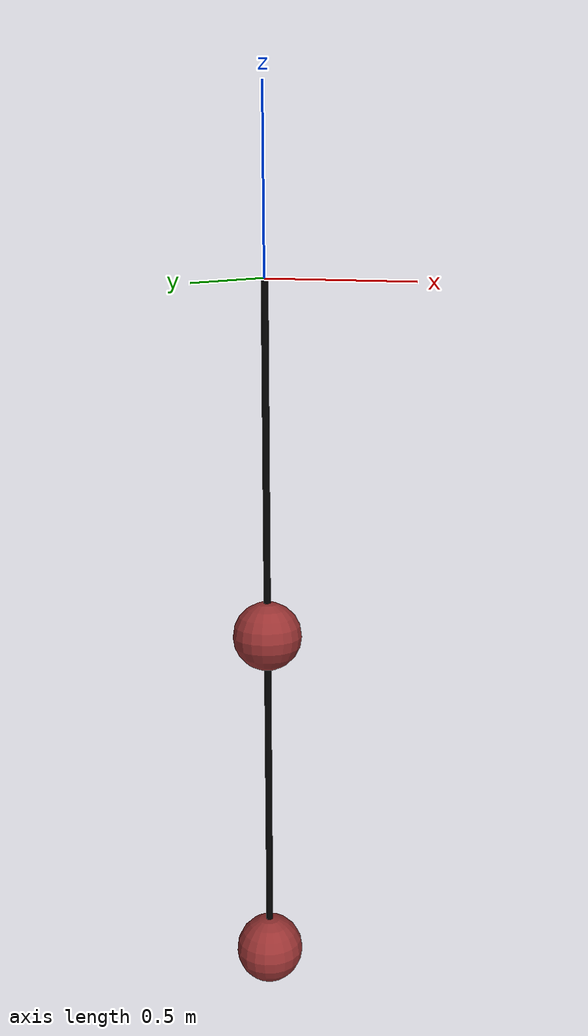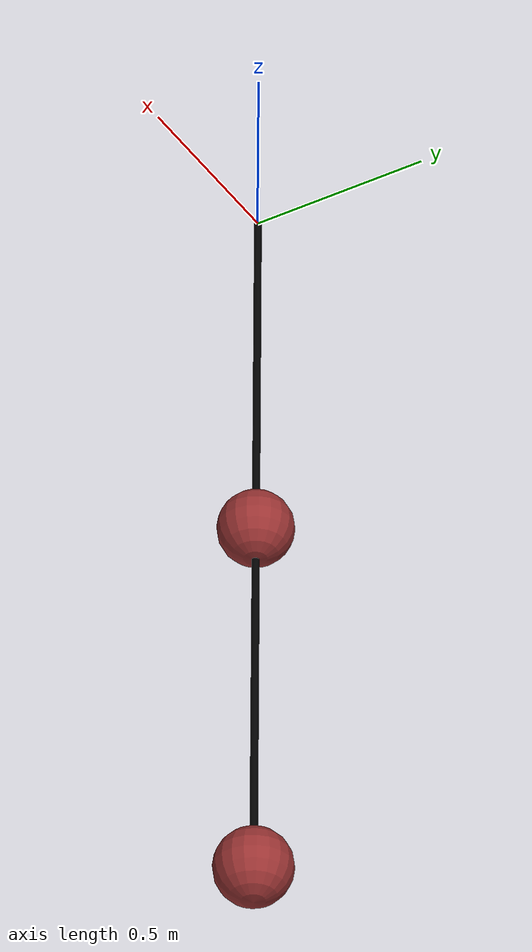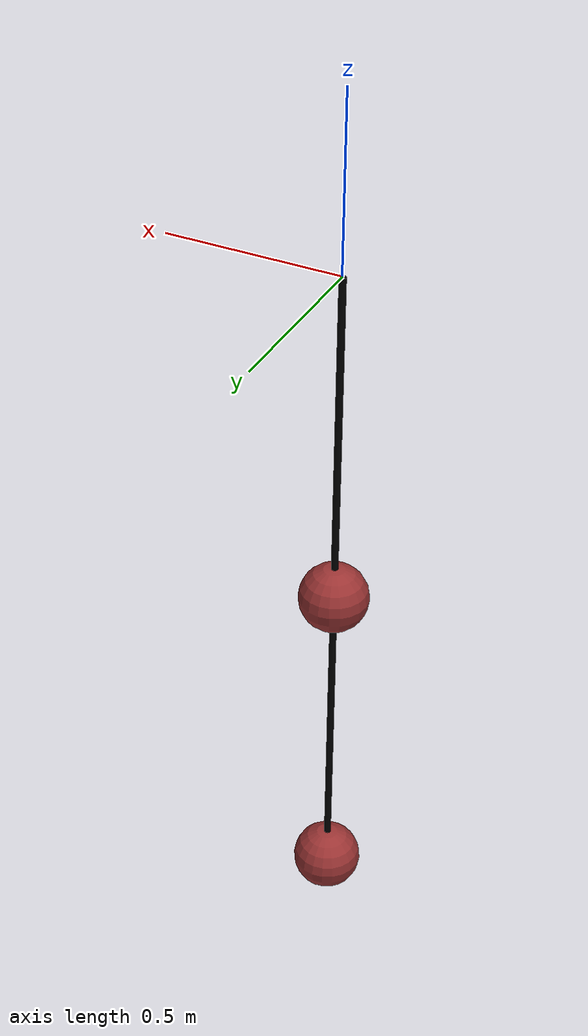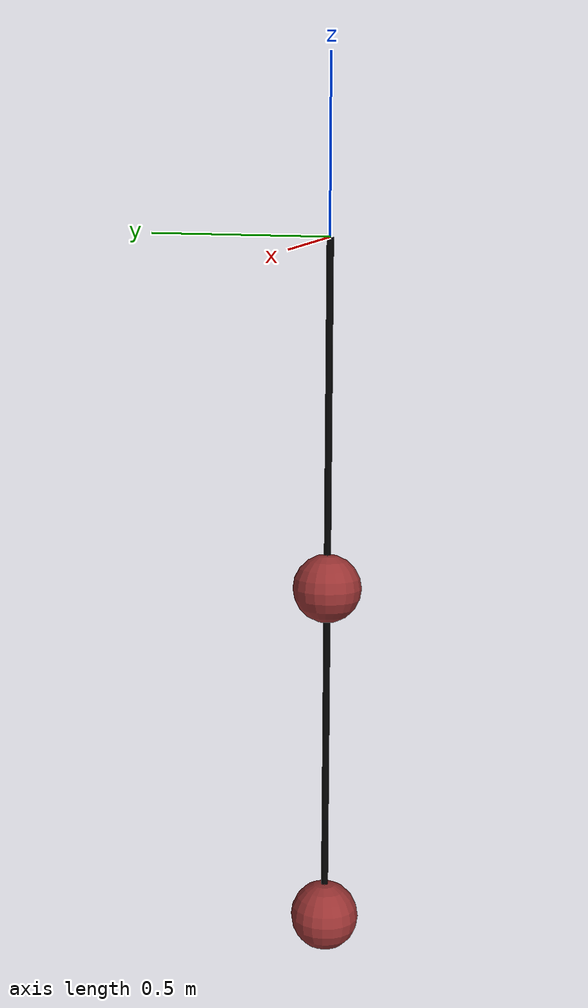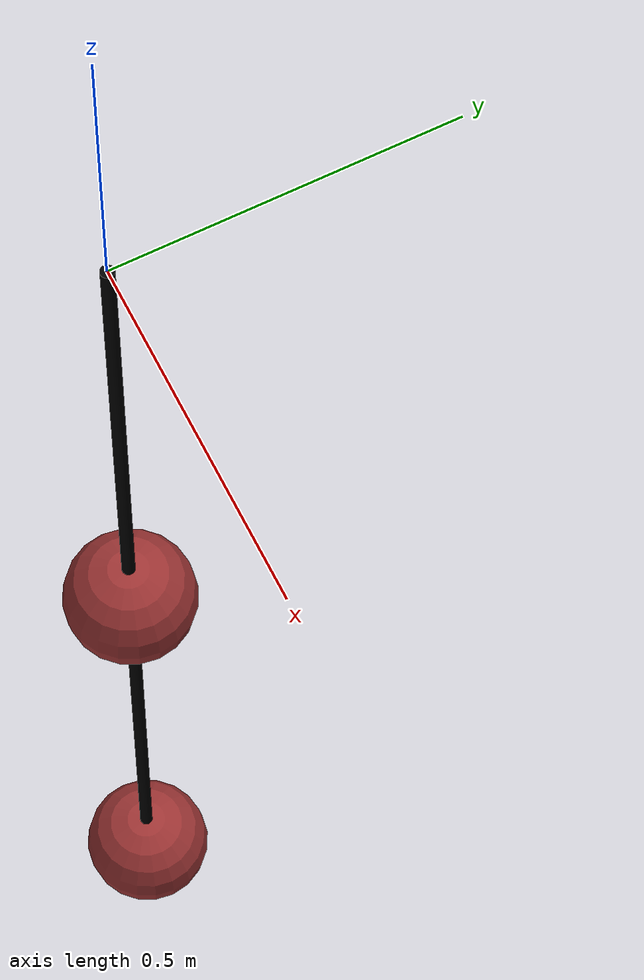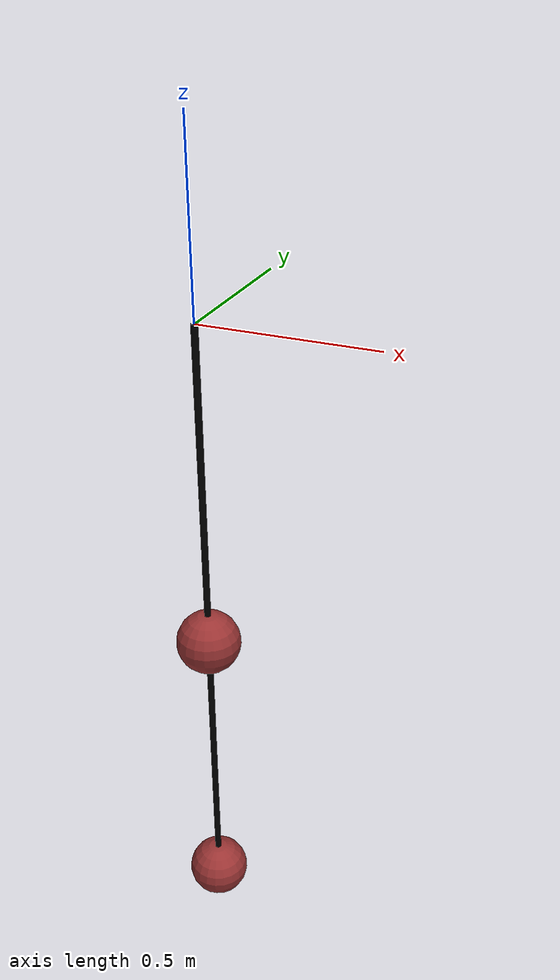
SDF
<?xml version="1.0"?>

<sdf version='1.6'>
  <model name='simple_double_pendulum'>
    <link name="upper_arm">
      <inertial>
        <pose>0 0 -1 0 0 0</pose>
        <mass>1</mass>
        <inertia>
          <ixx>0</ixx>
          <ixy>0</ixy>
          <ixz>0</ixz>
          <iyy>0</iyy>
          <iyz>0</iyz>
          <izz>0</izz>
        </inertia>
      </inertial>
      <visual name="arm">
        <pose>0 0 -.5 0 0 0</pose>
        <geometry>
           <cylinder>
            <length>1</length>
            <radius>.01</radius>
           </cylinder>
        </geometry>
        <material><diffuse>0 0 0 1</diffuse></material>
      </visual>
      <visual name="point_mass">
        <pose>0 0 -1 0 0 0</pose>
        <geometry>
          <sphere>
            <radius>.1</radius>
          </sphere>
        </geometry>
        <material><diffuse>.6 .2 .2 1</diffuse></material>
      </visual>
    </link>
    <joint name="shoulder" type="revolute">
      <parent>world</parent>
      <child>upper_arm</child>
      <axis>
        <xyz>0 1 0</xyz>
        <dynamics><damping>0.1</damping></dynamics>
      </axis>
    </joint>

    <link name="lower_arm">
      <pose>0 0 -1 0 0 0</pose>
      <inertial>
        <pose>0 0 -1 0 0 0</pose>
        <mass>1</mass>
        <inertia>
          <ixx>0</ixx>
          <ixy>0</ixy>
          <ixz>0</ixz>
          <iyy>0</iyy>
          <iyz>0</iyz>
          <izz>0</izz>
        </inertia>
      </inertial>
      <visual name="arm">
        <pose>0 0 -.5 0 0 0</pose>
        <geometry>
          <cylinder>
            <length>1</length>
            <radius>.01</radius>
          </cylinder>
        </geometry>
        <material><diffuse>0 0 0 1</diffuse></material>
      </visual>
      <visual name="point_mass">
        <pose>0 0 -1 0 0 0</pose>
        <geometry>
          <sphere>
            <radius>.1</radius>
          </sphere>
        </geometry>
        <material><diffuse>.6 .2 .2 1</diffuse></material>
      </visual>
    </link>
    <joint name="elbow" type="revolute">
      <parent>upper_arm</parent>
      <child>lower_arm</child>
      <axis>
        <xyz>0 1 0</xyz>
        <dynamics><damping>0.1</damping></dynamics>
      </axis>
    </joint>
  </model>
</sdf>
